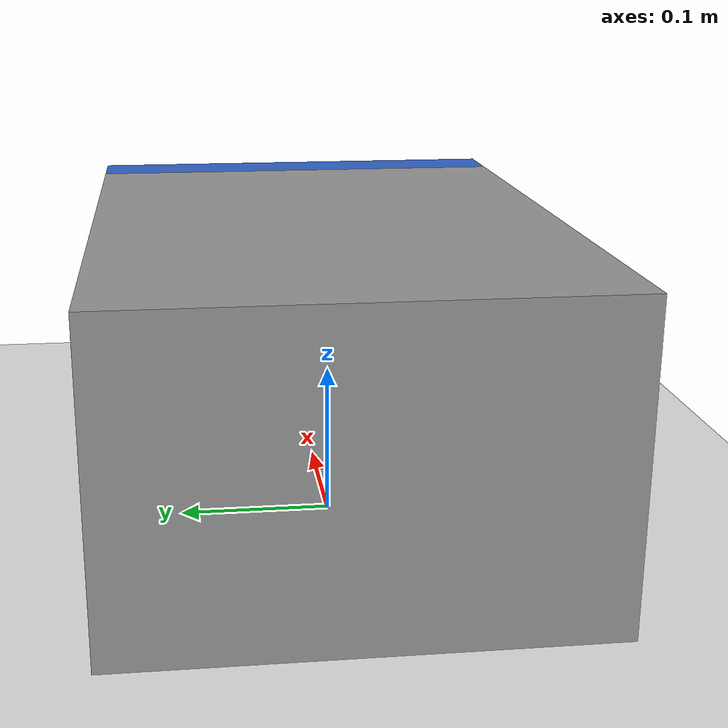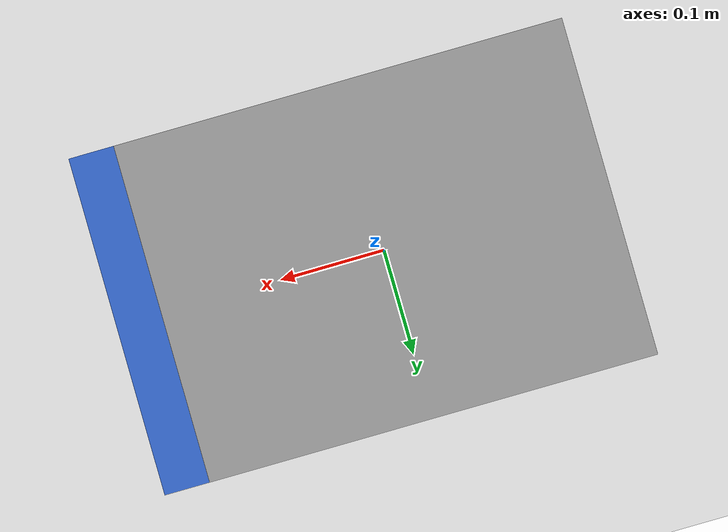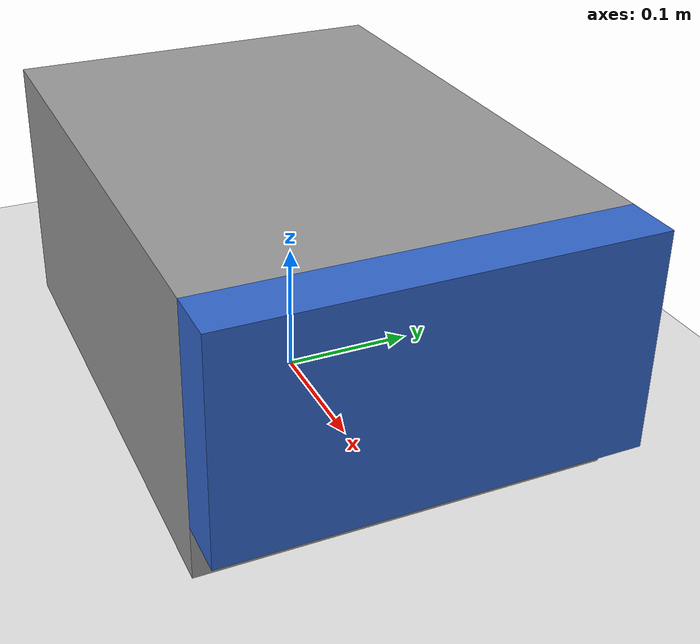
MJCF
<mujoco model="Simple_Door_Test">
  <compiler angle="degree" coordinate="local" inertiafromgeom="true"/>

  <default>
    <geom contype="1" conaffinity="1" density="1000"/>
    <joint armature="0.01" damping="1.0"/>
  </default>

  <asset>
    <material name="mat_box" rgba="0.6 0.6 0.6 1"/>
    <material name="mat_door" rgba="0.2 0.4 0.8 1"/>
  </asset>

  <worldbody>
    <!-- Floor for contact -->
    <geom name="floor" type="plane" size="2 2 0.1" rgba="0.9 0.9 0.9 1"/>

    <!-- Box Base (using primitive shapes instead of STL) -->
    <body name="Base_Box" pos="0 0 0.1">
      <!-- Main box body -->
      <geom name="box_main" type="box" size="0.2 0.15 0.1" material="mat_box"/>

      <!-- Door attached to the box -->
      <body name="Hinged_Door" pos="0.2 0 0">
        <!-- Hinge joint -->
        <joint name="door_hinge"
               type="hinge"
               pos="0 -0.15 0"
               axis="0 0 1"
               range="0 90"/>

        <!-- Door geometry -->
        <geom name="door_geom" type="box" size="0.02 0.15 0.08" pos="0.02 0 0.02" material="mat_door"/>
      </body>
    </body>
  </worldbody>
</mujoco>
